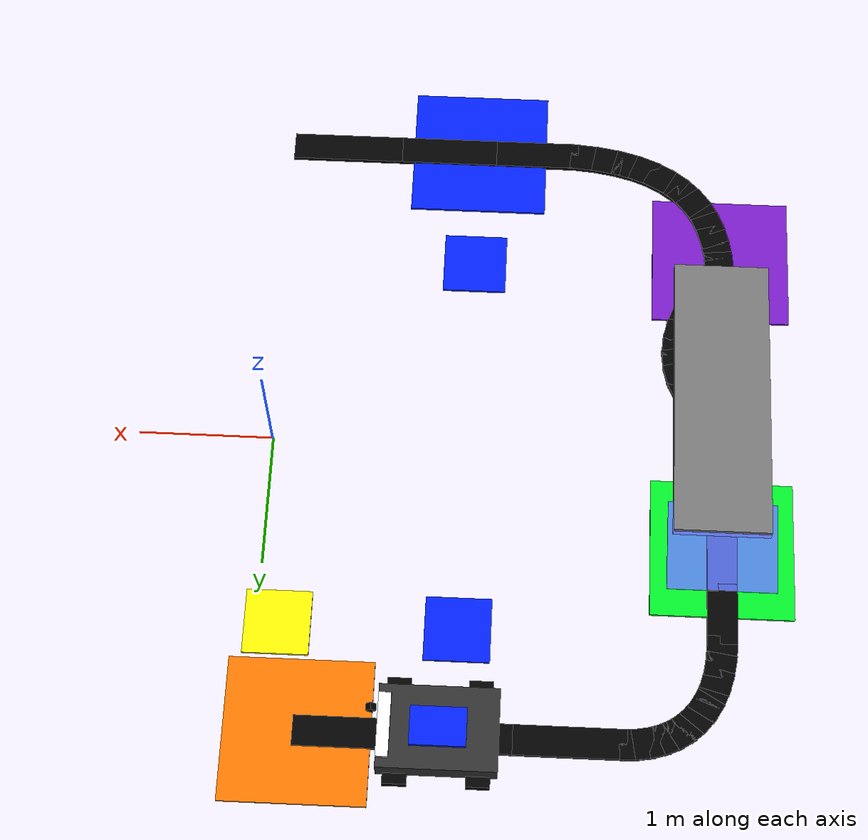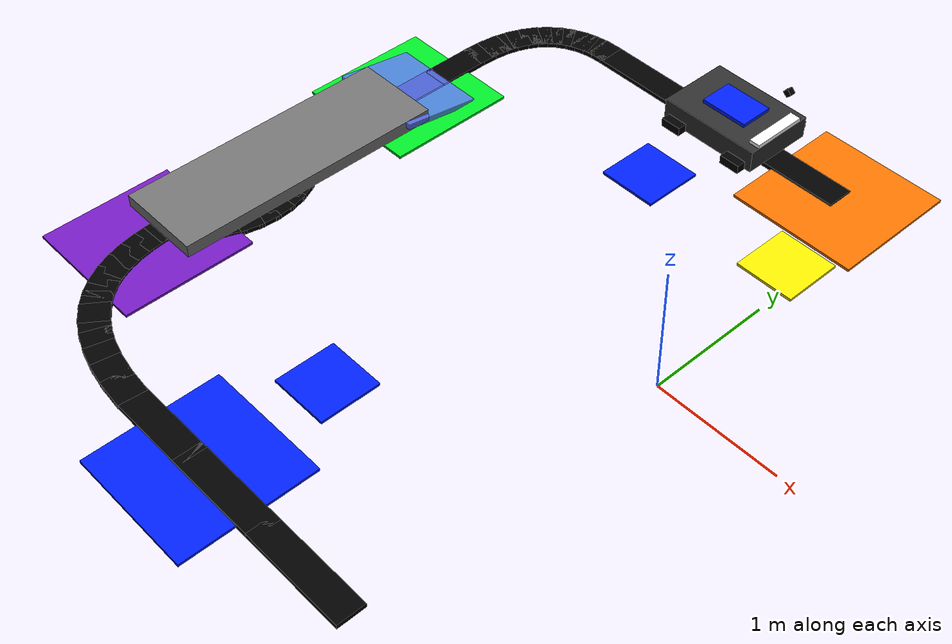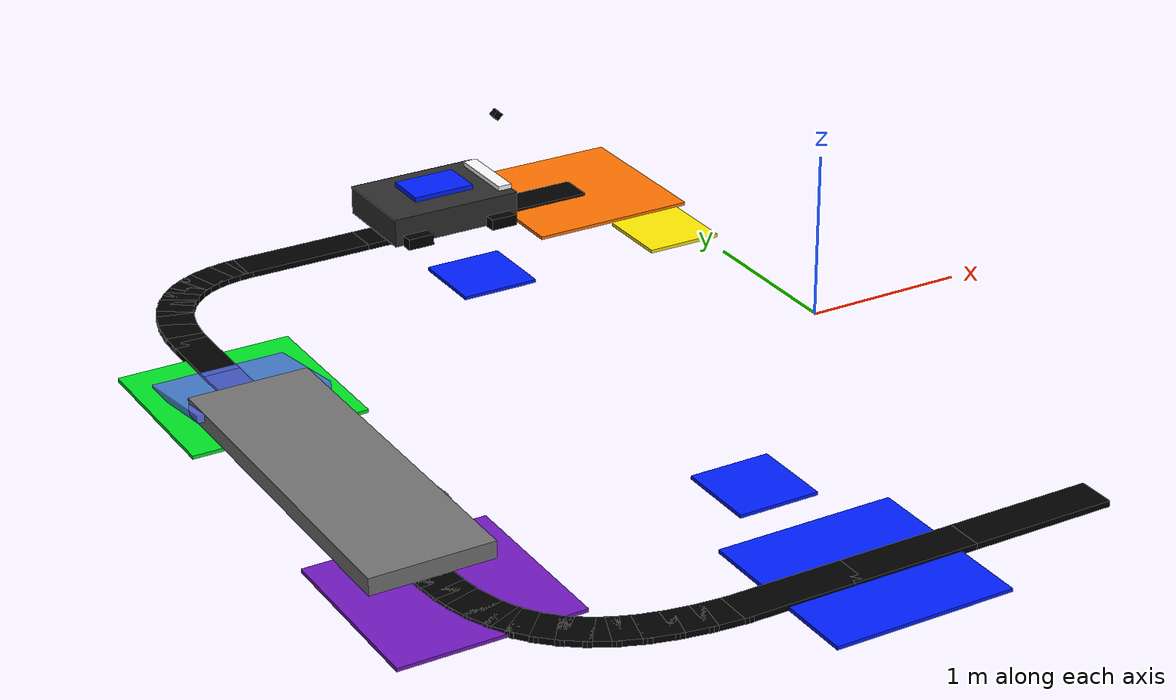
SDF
<sdf version="1.6">
 <world name="agv_factory_final_box_agv_v2">
  <include><uri>model://sun</uri></include>
  <model name="main_loop_04">
   <static>true</static>
   <pose>-0.4000 -2.5500 0.0175 0 0 3.1416</pose>
   <link name="link">
    <collision name="collision"><geometry><box><size>0.8600 0.2200 0.0350</size></box></geometry></collision>
    <visual name="visual">
     <geometry><box><size>0.8600 0.2200 0.0350</size></box></geometry>
     <material><ambient>0 0 0 1</ambient><diffuse>0 0 0 1</diffuse></material>
    </visual>
   </link>
  </model>
  <model name="main_loop_05">
   <static>true</static>
   <pose>-1.1750 -2.5500 0.0175 0 0 3.1416</pose>
   <link name="link">
    <collision name="collision"><geometry><box><size>0.8100 0.2200 0.0350</size></box></geometry></collision>
    <visual name="visual">
     <geometry><box><size>0.8100 0.2200 0.0350</size></box></geometry>
     <material><ambient>0 0 0 1</ambient><diffuse>0 0 0 1</diffuse></material>
    </visual>
   </link>
  </model>
  <model name="main_loop_06">
   <static>true</static>
   <pose>-1.8750 -2.5500 0.0175 0 0 3.1416</pose>
   <link name="link">
    <collision name="collision"><geometry><box><size>0.7100 0.2200 0.0350</size></box></geometry></collision>
    <visual name="visual">
     <geometry><box><size>0.7100 0.2200 0.0350</size></box></geometry>
     <material><ambient>0 0 0 1</ambient><diffuse>0 0 0 1</diffuse></material>
    </visual>
   </link>
  </model>
  <model name="main_loop_07">
   <static>true</static>
   <pose>-2.2915 -2.5416 0.0175 0 0 3.0504</pose>
   <link name="link">
    <collision name="collision"><geometry><box><size>0.2438 0.2200 0.0350</size></box></geometry></collision>
    <visual name="visual">
     <geometry><box><size>0.2438 0.2200 0.0350</size></box></geometry>
     <material><ambient>0 0 0 1</ambient><diffuse>0 0 0 1</diffuse></material>
    </visual>
   </link>
  </model>
  <model name="main_loop_08">
   <static>true</static>
   <pose>-2.4651 -2.5190 0.0175 0 0 2.9699</pose>
   <link name="link">
    <collision name="collision"><geometry><box><size>0.2265 0.2200 0.0350</size></box></geometry></collision>
    <visual name="visual">
     <geometry><box><size>0.2265 0.2200 0.0350</size></box></geometry>
     <material><ambient>0 0 0 1</ambient><diffuse>0 0 0 1</diffuse></material>
    </visual>
   </link>
  </model>
  <model name="main_loop_09">
   <static>true</static>
   <pose>-2.6200 -2.4850 0.0175 0 0 2.8766</pose>
   <link name="link">
    <collision name="collision"><geometry><box><size>0.2112 0.2200 0.0350</size></box></geometry></collision>
    <visual name="visual">
     <geometry><box><size>0.2112 0.2200 0.0350</size></box></geometry>
     <material><ambient>0 0 0 1</ambient><diffuse>0 0 0 1</diffuse></material>
    </visual>
   </link>
  </model>
  <model name="main_loop_10">
   <static>true</static>
   <pose>-2.7573 -2.4401 0.0175 0 0 2.7694</pose>
   <link name="link">
    <collision name="collision"><geometry><box><size>0.1981 0.2200 0.0350</size></box></geometry></collision>
    <visual name="visual">
     <geometry><box><size>0.1981 0.2200 0.0350</size></box></geometry>
     <material><ambient>0 0 0 1</ambient><diffuse>0 0 0 1</diffuse></material>
    </visual>
   </link>
  </model>
  <model name="main_loop_11">
   <static>true</static>
   <pose>-2.8777 -2.3849 0.0175 0 0 2.6488</pose>
   <link name="link">
    <collision name="collision"><geometry><box><size>0.1874 0.2200 0.0350</size></box></geometry></collision>
    <visual name="visual">
     <geometry><box><size>0.1874 0.2200 0.0350</size></box></geometry>
     <material><ambient>0 0 0 1</ambient><diffuse>0 0 0 1</diffuse></material>
    </visual>
   </link>
  </model>
  <model name="main_loop_12">
   <static>true</static>
   <pose>-2.9821 -2.3199 0.0175 0 0 2.5165</pose>
   <link name="link">
    <collision name="collision"><geometry><box><size>0.1792 0.2200 0.0350</size></box></geometry></collision>
    <visual name="visual">
     <geometry><box><size>0.1792 0.2200 0.0350</size></box></geometry>
     <material><ambient>0 0 0 1</ambient><diffuse>0 0 0 1</diffuse></material>
    </visual>
   </link>
  </model>
  <model name="main_loop_13">
   <static>true</static>
   <pose>-3.0715 -2.2456 0.0175 0 0 2.3767</pose>
   <link name="link">
    <collision name="collision"><geometry><box><size>0.1737 0.2200 0.0350</size></box></geometry></collision>
    <visual name="visual">
     <geometry><box><size>0.1737 0.2200 0.0350</size></box></geometry>
     <material><ambient>0 0 0 1</ambient><diffuse>0 0 0 1</diffuse></material>
    </visual>
   </link>
  </model>
  <model name="main_loop_14">
   <static>true</static>
   <pose>-3.1466 -2.1627 0.0175 0 0 2.2352</pose>
   <link name="link">
    <collision name="collision"><geometry><box><size>0.1707 0.2200 0.0350</size></box></geometry></collision>
    <visual name="visual">
     <geometry><box><size>0.1707 0.2200 0.0350</size></box></geometry>
     <material><ambient>0 0 0 1</ambient><diffuse>0 0 0 1</diffuse></material>
    </visual>
   </link>
  </model>
  <model name="main_loop_15">
   <static>true</static>
   <pose>-3.2084 -2.0716 0.0175 0 0 2.0983</pose>
   <link name="link">
    <collision name="collision"><geometry><box><size>0.1700 0.2200 0.0350</size></box></geometry></collision>
    <visual name="visual">
     <geometry><box><size>0.1700 0.2200 0.0350</size></box></geometry>
     <material><ambient>0 0 0 1</ambient><diffuse>0 0 0 1</diffuse></material>
    </visual>
   </link>
  </model>
  <model name="main_loop_16">
   <static>true</static>
   <pose>-3.2578 -1.9729 0.0175 0 0 1.9713</pose>
   <link name="link">
    <collision name="collision"><geometry><box><size>0.1711 0.2200 0.0350</size></box></geometry></collision>
    <visual name="visual">
     <geometry><box><size>0.1711 0.2200 0.0350</size></box></geometry>
     <material><ambient>0 0 0 1</ambient><diffuse>0 0 0 1</diffuse></material>
    </visual>
   </link>
  </model>
  <model name="main_loop_17">
   <static>true</static>
   <pose>-3.2955 -1.8672 0.0175 0 0 1.8575</pose>
   <link name="link">
    <collision name="collision"><geometry><box><size>0.1738 0.2200 0.0350</size></box></geometry></collision>
    <visual name="visual">
     <geometry><box><size>0.1738 0.2200 0.0350</size></box></geometry>
     <material><ambient>0 0 0 1</ambient><diffuse>0 0 0 1</diffuse></material>
    </visual>
   </link>
  </model>
  <model name="main_loop_18">
   <static>true</static>
   <pose>-3.3226 -1.7549 0.0175 0 0 1.7584</pose>
   <link name="link">
    <collision name="collision"><geometry><box><size>0.1774 0.2200 0.0350</size></box></geometry></collision>
    <visual name="visual">
     <geometry><box><size>0.1774 0.2200 0.0350</size></box></geometry>
     <material><ambient>0 0 0 1</ambient><diffuse>0 0 0 1</diffuse></material>
    </visual>
   </link>
  </model>
  <model name="main_loop_19">
   <static>true</static>
   <pose>-3.3398 -1.6367 0.0175 0 0 1.6737</pose>
   <link name="link">
    <collision name="collision"><geometry><box><size>0.1817 0.2200 0.0350</size></box></geometry></collision>
    <visual name="visual">
     <geometry><box><size>0.1817 0.2200 0.0350</size></box></geometry>
     <material><ambient>0 0 0 1</ambient><diffuse>0 0 0 1</diffuse></material>
    </visual>
   </link>
  </model>
  <model name="main_loop_20">
   <static>true</static>
   <pose>-3.3480 -1.5131 0.0175 0 0 1.6023</pose>
   <link name="link">
    <collision name="collision"><geometry><box><size>0.1862 0.2200 0.0350</size></box></geometry></collision>
    <visual name="visual">
     <geometry><box><size>0.1862 0.2200 0.0350</size></box></geometry>
     <material><ambient>0 0 0 1</ambient><diffuse>0 0 0 1</diffuse></material>
    </visual>
   </link>
  </model>
  <model name="main_loop_21">
   <static>true</static>
   <pose>-3.3500 -1.2000 0.0175 0 0 1.5708</pose>
   <link name="link">
    <collision name="collision"><geometry><box><size>0.5600 0.2200 0.0350</size></box></geometry></collision>
    <visual name="visual">
     <geometry><box><size>0.5600 0.2200 0.0350</size></box></geometry>
     <material><ambient>0 0 0 1</ambient><diffuse>0 0 0 1</diffuse></material>
    </visual>
   </link>
  </model>
  <model name="main_loop_22">
   <static>true</static>
   <pose>-3.3500 -0.7000 0.0175 0 0 1.5708</pose>
   <link name="link">
    <collision name="collision"><geometry><box><size>0.5600 0.2200 0.0350</size></box></geometry></collision>
    <visual name="visual">
     <geometry><box><size>0.5600 0.2200 0.0350</size></box></geometry>
     <material><ambient>0 0 0 1</ambient><diffuse>0 0 0 1</diffuse></material>
    </visual>
   </link>
  </model>
  <model name="main_loop_23">
   <static>true</static>
   <pose>-3.3500 -0.2000 0.0175 0 0 1.5708</pose>
   <link name="link">
    <collision name="collision"><geometry><box><size>0.5600 0.2200 0.0350</size></box></geometry></collision>
    <visual name="visual">
     <geometry><box><size>0.5600 0.2200 0.0350</size></box></geometry>
     <material><ambient>0 0 0 1</ambient><diffuse>0 0 0 1</diffuse></material>
    </visual>
   </link>
  </model>
  <model name="main_loop_24">
   <static>true</static>
   <pose>-3.3500 0.3000 0.0175 0 0 1.5708</pose>
   <link name="link">
    <collision name="collision"><geometry><box><size>0.5600 0.2200 0.0350</size></box></geometry></collision>
    <visual name="visual">
     <geometry><box><size>0.5600 0.2200 0.0350</size></box></geometry>
     <material><ambient>0 0 0 1</ambient><diffuse>0 0 0 1</diffuse></material>
    </visual>
   </link>
  </model>
  <model name="main_loop_25">
   <static>true</static>
   <pose>-3.3500 0.8000 0.0175 0 0 1.5708</pose>
   <link name="link">
    <collision name="collision"><geometry><box><size>0.5600 0.2200 0.0350</size></box></geometry></collision>
    <visual name="visual">
     <geometry><box><size>0.5600 0.2200 0.0350</size></box></geometry>
     <material><ambient>0 0 0 1</ambient><diffuse>0 0 0 1</diffuse></material>
    </visual>
   </link>
  </model>
  <model name="main_loop_26">
   <static>true</static>
   <pose>-3.3500 1.2500 0.0175 0 0 1.5708</pose>
   <link name="link">
    <collision name="collision"><geometry><box><size>0.4600 0.2200 0.0350</size></box></geometry></collision>
    <visual name="visual">
     <geometry><box><size>0.4600 0.2200 0.0350</size></box></geometry>
     <material><ambient>0 0 0 1</ambient><diffuse>0 0 0 1</diffuse></material>
    </visual>
   </link>
  </model>
  <model name="main_loop_27">
   <static>true</static>
   <pose>-3.3469 1.5156 0.0175 0 0 1.5241</pose>
   <link name="link">
    <collision name="collision"><geometry><box><size>0.1914 0.2200 0.0350</size></box></geometry></collision>
    <visual name="visual">
     <geometry><box><size>0.1914 0.2200 0.0350</size></box></geometry>
     <material><ambient>0 0 0 1</ambient><diffuse>0 0 0 1</diffuse></material>
    </visual>
   </link>
  </model>
  <model name="main_loop_28">
   <static>true</static>
   <pose>-3.3349 1.6408 0.0175 0 0 1.4211</pose>
   <link name="link">
    <collision name="collision"><geometry><box><size>0.1803 0.2200 0.0350</size></box></geometry></collision>
    <visual name="visual">
     <geometry><box><size>0.1803 0.2200 0.0350</size></box></geometry>
     <material><ambient>0 0 0 1</ambient><diffuse>0 0 0 1</diffuse></material>
    </visual>
   </link>
  </model>
  <model name="main_loop_29">
   <static>true</static>
   <pose>-3.3114 1.7536 0.0175 0 0 1.3052</pose>
   <link name="link">
    <collision name="collision"><geometry><box><size>0.1707 0.2200 0.0350</size></box></geometry></collision>
    <visual name="visual">
     <geometry><box><size>0.1707 0.2200 0.0350</size></box></geometry>
     <material><ambient>0 0 0 1</ambient><diffuse>0 0 0 1</diffuse></material>
    </visual>
   </link>
  </model>
  <model name="main_loop_30">
   <static>true</static>
   <pose>-3.2771 1.8544 0.0175 0 0 1.1764</pose>
   <link name="link">
    <collision name="collision"><geometry><box><size>0.1627 0.2200 0.0350</size></box></geometry></collision>
    <visual name="visual">
     <geometry><box><size>0.1627 0.2200 0.0350</size></box></geometry>
     <material><ambient>0 0 0 1</ambient><diffuse>0 0 0 1</diffuse></material>
    </visual>
   </link>
  </model>
  <model name="main_loop_31">
   <static>true</static>
   <pose>-3.2328 1.9434 0.0175 0 0 1.0359</pose>
   <link name="link">
    <collision name="collision"><geometry><box><size>0.1565 0.2200 0.0350</size></box></geometry></collision>
    <visual name="visual">
     <geometry><box><size>0.1565 0.2200 0.0350</size></box></geometry>
     <material><ambient>0 0 0 1</ambient><diffuse>0 0 0 1</diffuse></material>
    </visual>
   </link>
  </model>
  <model name="main_loop_32">
   <static>true</static>
   <pose>-3.1791 2.0206 0.0175 0 0 0.8866</pose>
   <link name="link">
    <collision name="collision"><geometry><box><size>0.1521 0.2200 0.0350</size></box></geometry></collision>
    <visual name="visual">
     <geometry><box><size>0.1521 0.2200 0.0350</size></box></geometry>
     <material><ambient>0 0 0 1</ambient><diffuse>0 0 0 1</diffuse></material>
    </visual>
   </link>
  </model>
  <model name="main_loop_33">
   <static>true</static>
   <pose>-3.1167 2.0862 0.0175 0 0 0.7331</pose>
   <link name="link">
    <collision name="collision"><geometry><box><size>0.1496 0.2200 0.0350</size></box></geometry></collision>
    <visual name="visual">
     <geometry><box><size>0.1496 0.2200 0.0350</size></box></geometry>
     <material><ambient>0 0 0 1</ambient><diffuse>0 0 0 1</diffuse></material>
    </visual>
   </link>
  </model>
  <model name="main_loop_34">
   <static>true</static>
   <pose>-3.0464 2.1405 0.0175 0 0 0.5803</pose>
   <link name="link">
    <collision name="collision"><geometry><box><size>0.1487 0.2200 0.0350</size></box></geometry></collision>
    <visual name="visual">
     <geometry><box><size>0.1487 0.2200 0.0350</size></box></geometry>
     <material><ambient>0 0 0 1</ambient><diffuse>0 0 0 1</diffuse></material>
    </visual>
   </link>
  </model>
  <model name="main_loop_35">
   <static>true</static>
   <pose>-2.9687 2.1836 0.0175 0 0 0.4332</pose>
   <link name="link">
    <collision name="collision"><geometry><box><size>0.1494 0.2200 0.0350</size></box></geometry></collision>
    <visual name="visual">
     <geometry><box><size>0.1494 0.2200 0.0350</size></box></geometry>
     <material><ambient>0 0 0 1</ambient><diffuse>0 0 0 1</diffuse></material>
    </visual>
   </link>
  </model>
  <model name="main_loop_36">
   <static>true</static>
   <pose>-2.8844 2.2156 0.0175 0 0 0.2954</pose>
   <link name="link">
    <collision name="collision"><geometry><box><size>0.1513 0.2200 0.0350</size></box></geometry></collision>
    <visual name="visual">
     <geometry><box><size>0.1513 0.2200 0.0350</size></box></geometry>
     <material><ambient>0 0 0 1</ambient><diffuse>0 0 0 1</diffuse></material>
    </visual>
   </link>
  </model>
  <model name="main_loop_37">
   <static>true</static>
   <pose>-2.7943 2.2368 0.0175 0 0 0.1687</pose>
   <link name="link">
    <collision name="collision"><geometry><box><size>0.1543 0.2200 0.0350</size></box></geometry></collision>
    <visual name="visual">
     <geometry><box><size>0.1543 0.2200 0.0350</size></box></geometry>
     <material><ambient>0 0 0 1</ambient><diffuse>0 0 0 1</diffuse></material>
    </visual>
   </link>
  </model>
  <model name="main_loop_38">
   <static>true</static>
   <pose>-2.6989 2.2474 0.0175 0 0 0.0535</pose>
   <link name="link">
    <collision name="collision"><geometry><box><size>0.1579 0.2200 0.0350</size></box></geometry></collision>
    <visual name="visual">
     <geometry><box><size>0.1579 0.2200 0.0350</size></box></geometry>
     <material><ambient>0 0 0 1</ambient><diffuse>0 0 0 1</diffuse></material>
    </visual>
   </link>
  </model>
  <model name="main_loop_39">
   <static>true</static>
   <pose>-2.2750 2.2500 0.0175 0 0 0.0000</pose>
   <link name="link">
    <collision name="collision"><geometry><box><size>0.8100 0.2200 0.0350</size></box></geometry></collision>
    <visual name="visual">
     <geometry><box><size>0.8100 0.2200 0.0350</size></box></geometry>
     <material><ambient>0 0 0 1</ambient><diffuse>0 0 0 1</diffuse></material>
    </visual>
   </link>
  </model>
  <model name="main_loop_40">
   <static>true</static>
   <pose>-1.5250 2.2500 0.0175 0 0 0.0000</pose>
   <link name="link">
    <collision name="collision"><geometry><box><size>0.8100 0.2200 0.0350</size></box></geometry></collision>
    <visual name="visual">
     <geometry><box><size>0.8100 0.2200 0.0350</size></box></geometry>
     <material><ambient>0 0 0 1</ambient><diffuse>0 0 0 1</diffuse></material>
    </visual>
   </link>
  </model>
  <model name="main_loop_41">
   <static>true</static>
   <pose>-0.7500 2.2500 0.0175 0 0 0.0000</pose>
   <link name="link">
    <collision name="collision"><geometry><box><size>0.8600 0.2200 0.0350</size></box></geometry></collision>
    <visual name="visual">
     <geometry><box><size>0.8600 0.2200 0.0350</size></box></geometry>
     <material><ambient>0 0 0 1</ambient><diffuse>0 0 0 1</diffuse></material>
    </visual>
   </link>
  </model>
  <model name="left_inner_curve_01">
   <static>true</static>
   <pose>-3.2984 -0.3247 0.0175 0 0 -0.4464</pose>
   <link name="link">
    <collision name="collision"><geometry><box><size>0.1743 0.2200 0.0350</size></box></geometry></collision>
    <visual name="visual">
     <geometry><box><size>0.1743 0.2200 0.0350</size></box></geometry>
     <material><ambient>0 0 0 1</ambient><diffuse>0 0 0 1</diffuse></material>
    </visual>
   </link>
  </model>
  <model name="left_inner_curve_02">
   <static>true</static>
   <pose>-3.2047 -0.3846 0.0175 0 0 -0.6964</pose>
   <link name="link">
    <collision name="collision"><geometry><box><size>0.1700 0.2200 0.0350</size></box></geometry></collision>
    <visual name="visual">
     <geometry><box><size>0.1700 0.2200 0.0350</size></box></geometry>
     <material><ambient>0 0 0 1</ambient><diffuse>0 0 0 1</diffuse></material>
    </visual>
   </link>
  </model>
  <model name="left_inner_curve_03">
   <static>true</static>
   <pose>-3.1297 -0.4639 0.0175 0 0 -0.9295</pose>
   <link name="link">
    <collision name="collision"><geometry><box><size>0.1697 0.2200 0.0350</size></box></geometry></collision>
    <visual name="visual">
     <geometry><box><size>0.1697 0.2200 0.0350</size></box></geometry>
     <material><ambient>0 0 0 1</ambient><diffuse>0 0 0 1</diffuse></material>
    </visual>
   </link>
  </model>
  <model name="left_inner_curve_04">
   <static>true</static>
   <pose>-3.0734 -0.5585 0.0175 0 0 -1.1380</pose>
   <link name="link">
    <collision name="collision"><geometry><box><size>0.1718 0.2200 0.0350</size></box></geometry></collision>
    <visual name="visual">
     <geometry><box><size>0.1718 0.2200 0.0350</size></box></geometry>
     <material><ambient>0 0 0 1</ambient><diffuse>0 0 0 1</diffuse></material>
    </visual>
   </link>
  </model>
  <model name="left_inner_curve_05">
   <static>true</static>
   <pose>-3.0359 -0.6648 0.0175 0 0 -1.3230</pose>
   <link name="link">
    <collision name="collision"><geometry><box><size>0.1747 0.2200 0.0350</size></box></geometry></collision>
    <visual name="visual">
     <geometry><box><size>0.1747 0.2200 0.0350</size></box></geometry>
     <material><ambient>0 0 0 1</ambient><diffuse>0 0 0 1</diffuse></material>
    </visual>
   </link>
  </model>
  <model name="left_inner_curve_06">
   <static>true</static>
   <pose>-3.0172 -0.7790 0.0175 0 0 -1.4909</pose>
   <link name="link">
    <collision name="collision"><geometry><box><size>0.1774 0.2200 0.0350</size></box></geometry></collision>
    <visual name="visual">
     <geometry><box><size>0.1774 0.2200 0.0350</size></box></geometry>
     <material><ambient>0 0 0 1</ambient><diffuse>0 0 0 1</diffuse></material>
    </visual>
   </link>
  </model>
  <model name="left_inner_curve_07">
   <static>true</static>
   <pose>-3.0172 -0.8971 0.0175 0 0 -1.6493</pose>
   <link name="link">
    <collision name="collision"><geometry><box><size>0.1795 0.2200 0.0350</size></box></geometry></collision>
    <visual name="visual">
     <geometry><box><size>0.1795 0.2200 0.0350</size></box></geometry>
     <material><ambient>0 0 0 1</ambient><diffuse>0 0 0 1</diffuse></material>
    </visual>
   </link>
  </model>
  <model name="left_inner_curve_08">
   <static>true</static>
   <pose>-3.0359 -1.0154 0.0175 0 0 -1.8059</pose>
   <link name="link">
    <collision name="collision"><geometry><box><size>0.1807 0.2200 0.0350</size></box></geometry></collision>
    <visual name="visual">
     <geometry><box><size>0.1807 0.2200 0.0350</size></box></geometry>
     <material><ambient>0 0 0 1</ambient><diffuse>0 0 0 1</diffuse></material>
    </visual>
   </link>
  </model>
  <model name="left_inner_curve_09">
   <static>true</static>
   <pose>-3.0734 -1.1300 0.0175 0 0 -1.9676</pose>
   <link name="link">
    <collision name="collision"><geometry><box><size>0.1813 0.2200 0.0350</size></box></geometry></collision>
    <visual name="visual">
     <geometry><box><size>0.1813 0.2200 0.0350</size></box></geometry>
     <material><ambient>0 0 0 1</ambient><diffuse>0 0 0 1</diffuse></material>
    </visual>
   </link>
  </model>
  <model name="left_inner_curve_10">
   <static>true</static>
   <pose>-3.1297 -1.2372 0.0175 0 0 -2.1403</pose>
   <link name="link">
    <collision name="collision"><geometry><box><size>0.1817 0.2200 0.0350</size></box></geometry></collision>
    <visual name="visual">
     <geometry><box><size>0.1817 0.2200 0.0350</size></box></geometry>
     <material><ambient>0 0 0 1</ambient><diffuse>0 0 0 1</diffuse></material>
    </visual>
   </link>
  </model>
  <model name="left_inner_curve_11">
   <static>true</static>
   <pose>-3.2047 -1.3331 0.0175 0 0 -2.3279</pose>
   <link name="link">
    <collision name="collision"><geometry><box><size>0.1829 0.2200 0.0350</size></box></geometry></collision>
    <visual name="visual">
     <geometry><box><size>0.1829 0.2200 0.0350</size></box></geometry>
     <material><ambient>0 0 0 1</ambient><diffuse>0 0 0 1</diffuse></material>
    </visual>
   </link>
  </model>
  <model name="left_inner_curve_12">
   <static>true</static>
   <pose>-3.2984 -1.4139 0.0175 0 0 -2.5303</pose>
   <link name="link">
    <collision name="collision"><geometry><box><size>0.1859 0.2200 0.0350</size></box></geometry></collision>
    <visual name="visual">
     <geometry><box><size>0.1859 0.2200 0.0350</size></box></geometry>
     <material><ambient>0 0 0 1</ambient><diffuse>0 0 0 1</diffuse></material>
    </visual>
   </link>
  </model>
  <model name="orange_agv02_start_area">
   <static>true</static>
   <pose>-0.3500 2.2500 0.0100 0 0 0.0000</pose>
   <link name="link">
    <collision name="collision"><geometry><box><size>1.0500 1.0500 0.0200</size></box></geometry></collision>
    <visual name="visual">
     <geometry><box><size>1.0500 1.0500 0.0200</size></box></geometry>
     <material><ambient>1.0 0.45 0.0 1.0</ambient><diffuse>1.0 0.45 0.0 1.0</diffuse></material>
    </visual>
   </link>
  </model>
  <model name="blue_bottom_area">
   <static>true</static>
   <pose>-1.4500 -2.5500 0.0100 0 0 0.0000</pose>
   <link name="link">
    <collision name="collision"><geometry><box><size>1.0500 1.0500 0.0200</size></box></geometry></collision>
    <visual name="visual">
     <geometry><box><size>1.0500 1.0500 0.0200</size></box></geometry>
     <material><ambient>0.0 0.12 1.0 1.0</ambient><diffuse>0.0 0.12 1.0 1.0</diffuse></material>
    </visual>
   </link>
  </model>
  <model name="purple_left_area">
   <static>true</static>
   <pose>-3.3500 -1.6500 0.0100 0 0 0.0000</pose>
   <link name="link">
    <collision name="collision"><geometry><box><size>1.0500 1.0500 0.0200</size></box></geometry></collision>
    <visual name="visual">
     <geometry><box><size>1.0500 1.0500 0.0200</size></box></geometry>
     <material><ambient>0.45 0.1 0.75 1.0</ambient><diffuse>0.45 0.1 0.75 1.0</diffuse></material>
    </visual>
   </link>
  </model>
  <model name="green_left_square">
   <static>true</static>
   <pose>-3.3500 0.7500 0.0100 0 0 0.0000</pose>
   <link name="link">
    <collision name="collision"><geometry><box><size>1.0500 1.0500 0.0200</size></box></geometry></collision>
    <visual name="visual">
     <geometry><box><size>1.0500 1.0500 0.0200</size></box></geometry>
     <material><ambient>0.0 0.9 0.15 1.0</ambient><diffuse>0.0 0.9 0.15 1.0</diffuse></material>
    </visual>
   </link>
  </model>
  <model name="conveyor_area">
   <static>true</static>
   <pose>-3.3500 -0.4500 0.0850 0 0 0.0000</pose>
   <link name="link">
    <collision name="collision"><geometry><box><size>0.7200 2.2000 0.1000</size></box></geometry></collision>
    <visual name="visual">
     <geometry><box><size>0.7200 2.2000 0.1000</size></box></geometry>
     <material><ambient>0.45 0.45 0.45 1.0</ambient><diffuse>0.45 0.45 0.45 1.0</diffuse></material>
    </visual>
   </link>
  </model>
  <model name="ramp_area">
   <static>true</static>
   <pose>-3.3500 0.7500 0.0625 -0.1545 0.0000 0.0000</pose>
   <link name="link">
    <collision name="collision"><geometry><box><size>0.8000 0.6500 0.0450</size></box></geometry></collision>
    <visual name="visual">
     <geometry><box><size>0.8000 0.6500 0.0450</size></box></geometry>
     <material><ambient>0.38 0.48 1.0 0.85</ambient><diffuse>0.38 0.48 1.0 0.85</diffuse></material>
    </visual>
   </link>
  </model>
  <model name="finished_blue_box">
   <static>true</static>
   <pose>-1.4500 1.4500 0.0100 0 0 0.0000</pose>
   <link name="link">
    <collision name="collision"><geometry><box><size>0.4800 0.4800 0.0200</size></box></geometry></collision>
    <visual name="visual">
     <geometry><box><size>0.4800 0.4800 0.0200</size></box></geometry>
     <material><ambient>0.0 0.12 1.0 1.0</ambient><diffuse>0.0 0.12 1.0 1.0</diffuse></material>
    </visual>
   </link>
  </model>
  <model name="finished_yellow_box">
   <static>true</static>
   <pose>-0.1500 1.4500 0.0100 0 0 0.0000</pose>
   <link name="link">
    <collision name="collision"><geometry><box><size>0.4800 0.4800 0.0200</size></box></geometry></collision>
    <visual name="visual">
     <geometry><box><size>0.4800 0.4800 0.0200</size></box></geometry>
     <material><ambient>1.0 0.92 0.0 1.0</ambient><diffuse>1.0 0.92 0.0 1.0</diffuse></material>
    </visual>
   </link>
  </model>
  <model name="material_blue_box">
   <static>true</static>
   <pose>-1.4500 -1.5500 0.0100 0 0 0.0000</pose>
   <link name="link">
    <collision name="collision"><geometry><box><size>0.4800 0.4800 0.0200</size></box></geometry></collision>
    <visual name="visual">
     <geometry><box><size>0.4800 0.4800 0.0200</size></box></geometry>
     <material><ambient>0.0 0.12 1.0 1.0</ambient><diffuse>0.0 0.12 1.0 1.0</diffuse></material>
    </visual>
   </link>
  </model>
  <model name="AGV02">
   <static>false</static>
   <pose>-1.3500 2.2500 0.1600 0 0 0.0000</pose>
   <link name="base_link">
    <collision name="body_collision"><geometry><box><size>0.8500 0.6000 0.1800</size></box></geometry></collision>
    <visual name="body_visual">
     <geometry><box><size>0.8500 0.6000 0.1800</size></box></geometry>
     <material><ambient>0.18 0.18 0.18 1.0</ambient><diffuse>0.18 0.18 0.18 1.0</diffuse></material>
    </visual>
    <visual name="front_direction_marker">
     <pose>0.3800 0 0.1050 0 0 0</pose>
     <geometry><box><size>0.0900 0.4600 0.0300</size></box></geometry>
     <material><ambient>1.0 1.0 1.0 1.0</ambient><diffuse>1.0 1.0 1.0 1.0</diffuse></material>
    </visual>
    <visual name="top_id_marker">
     <pose>0 0 0.1150 0 0 0</pose>
     <geometry><box><size>0.4000 0.2800 0.0300</size></box></geometry>
     <material><ambient>0.0 0.12 1.0 1.0</ambient><diffuse>0.0 0.12 1.0 1.0</diffuse></material>
    </visual>
    <visual name="left_front_wheel">
     <pose>0.2900 0.3450 -0.0550 0 0 0</pose>
     <geometry><box><size>0.1700 0.0750 0.0700</size></box></geometry>
     <material><ambient>0.0 0.0 0.0 1.0</ambient><diffuse>0.0 0.0 0.0 1.0</diffuse></material>
    </visual>
    <visual name="left_rear_wheel">
     <pose>-0.2900 0.3450 -0.0550 0 0 0</pose>
     <geometry><box><size>0.1700 0.0750 0.0700</size></box></geometry>
     <material><ambient>0.0 0.0 0.0 1.0</ambient><diffuse>0.0 0.0 0.0 1.0</diffuse></material>
    </visual>
    <visual name="right_front_wheel">
     <pose>0.2900 -0.3450 -0.0550 0 0 0</pose>
     <geometry><box><size>0.1700 0.0750 0.0700</size></box></geometry>
     <material><ambient>0.0 0.0 0.0 1.0</ambient><diffuse>0.0 0.0 0.0 1.0</diffuse></material>
    </visual>
    <visual name="right_rear_wheel">
     <pose>-0.2900 -0.3450 -0.0550 0 0 0</pose>
     <geometry><box><size>0.1700 0.0750 0.0700</size></box></geometry>
     <material><ambient>0.0 0.0 0.0 1.0</ambient><diffuse>0.0 0.0 0.0 1.0</diffuse></material>
    </visual>
   </link>
   <link name="agv02_camera_link">
    <pose>0.45 0 0.50 0 0.7854 0</pose>
    <visual name="agv02_camera_visual">
     <geometry><box><size>0.05 0.05 0.05</size></box></geometry>
     <material><ambient>0 0 0 1</ambient><diffuse>0 0 0 1</diffuse></material>
    </visual>
    <sensor name="agv02_rgb_camera" type="camera">
     <always_on>true</always_on>
     <update_rate>20</update_rate>
     <visualize>true</visualize>
     <camera>
      <horizontal_fov>1.047</horizontal_fov>
      <image><width>640</width><height>480</height><format>R8G8B8</format></image>
      <clip><near>0.01</near><far>100</far></clip>
     </camera>
     <plugin name="agv02_camera_ros_plugin" filename="libgazebo_ros_camera.so">
      <ros><namespace>/AGV02</namespace></ros>
      <camera_name>agv02_camera</camera_name>
      <frame_name>agv02_camera_link</frame_name>
     </plugin>
    </sensor>
   </link>
   <joint name="agv02_camera_joint" type="fixed">
    <parent>base_link</parent>
    <child>agv02_camera_link</child>
   </joint>
  </model>
 </world>
</sdf>
